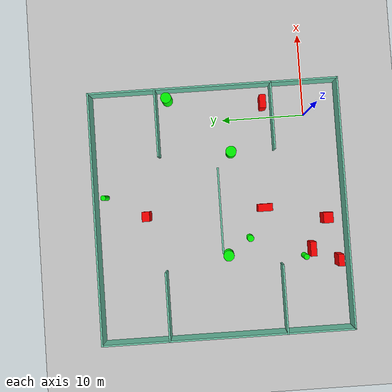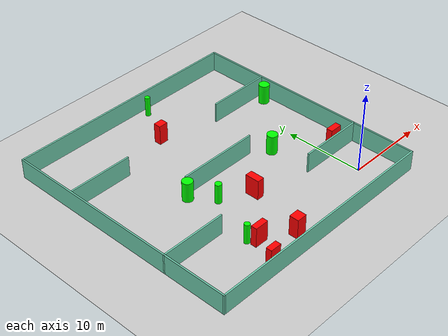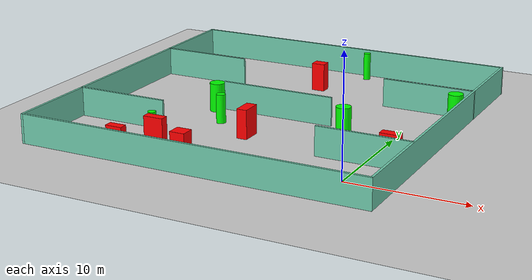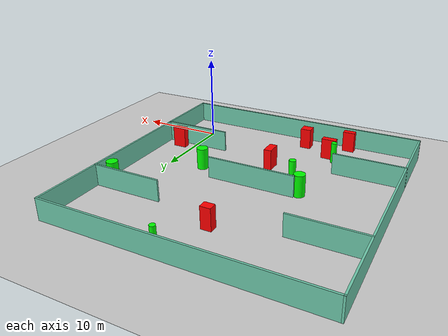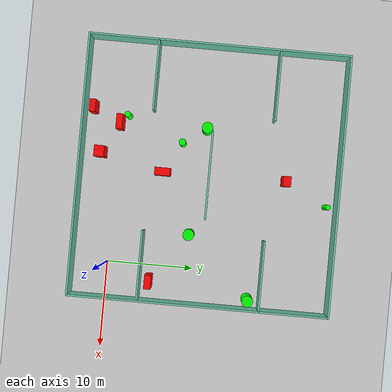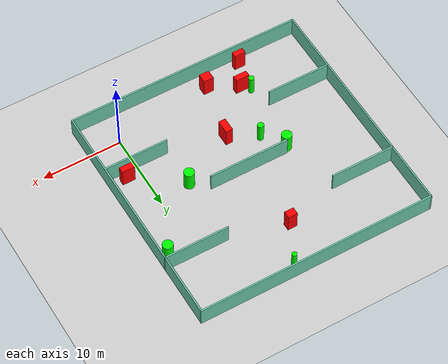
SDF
<sdf version="1.7">
 <world name="default">
  <light name="sun" type="directional">
   <pose>0 0 10 0 -0 0</pose>
   <diffuse>0.8 0.8 0.8 1</diffuse>
   <specular>0.2 0.2 0.2 1</specular>
   <attenuation>
    <range>1000</range>
    <constant>0.9</constant>
    <linear>0.01</linear>
    <quadratic>0.001</quadratic>
   </attenuation>
   <direction>-0.5 0.1 -0.9</direction>
   <spot><inner_angle>0</inner_angle><outer_angle>0</outer_angle><falloff>0</falloff></spot>
  </light>
  <model name="ground_plane">
   <static>1</static>
   <link name="link">
    <collision name="collision">
     <geometry><plane><normal>0 0 1</normal><size>100 100</size></plane></geometry>
     <surface>
      <contact><collide_bitmask>65535</collide_bitmask></contact>
      <friction><ode><mu>100</mu><mu2>50</mu2></ode></friction>
     </surface>
    </collision>
    <visual name="visual">
     <cast_shadows>0</cast_shadows>
     <geometry><plane><normal>0 0 1</normal><size>100 100</size></plane></geometry>
     <material>
      <script><uri>file://media/materials/scripts/gazebo.material</uri><name>Gazebo/Grey</name></script>
     </material>
    </visual>
   </link>
  </model>
  <gravity>0 0 -9.8</gravity>
  <magnetic_field>6e-06 2.3e-05 -4.2e-05</magnetic_field>
  <atmosphere type="adiabatic"/>
  <physics type="ode">
   <max_step_size>0.001</max_step_size>
   <real_time_factor>1</real_time_factor>
   <real_time_update_rate>1000</real_time_update_rate>
  </physics>
  <scene><ambient>0.4 0.4 0.4 1</ambient><background>0.7 0.7 0.7 1</background><shadows>1</shadows></scene>
  <spherical_coordinates>
   <surface_model>EARTH_WGS84</surface_model>
   <latitude_deg>0</latitude_deg>
   <longitude_deg>0</longitude_deg>
   <elevation>0</elevation>
   <heading_deg>0</heading_deg>
  </spherical_coordinates>
  <model name="my_base_walls">
   <link name="Wall_10">
    <collision name="Wall_10_Collision">
     <geometry><box><size>8.2 0.2 2.5</size></box></geometry>
     <pose>0 0 1.25 0 -0 0</pose>
    </collision>
    <visual name="Wall_10_Visual">
     <pose>0 0 1.25 0 -0 0</pose>
     <geometry><box><size>8.2 0.2 2.5</size></box></geometry>
     <material>
      <script><uri>file://media/materials/scripts/gazebo.material</uri><name>Gazebo/Grey</name></script>
      <ambient>0.435294 0.796078 0.67451 1</ambient>
     </material>
     <meta><layer>0</layer></meta>
    </visual>
    <pose>-11 -7 0 0 -0 0</pose>
   </link>
   <link name="Wall_12">
    <collision name="Wall_12_Collision">
     <geometry><box><size>8.2 0.2 2.5</size></box></geometry>
     <pose>0 0 1.25 0 -0 0</pose>
    </collision>
    <visual name="Wall_12_Visual">
     <pose>0 0 1.25 0 -0 0</pose>
     <geometry><box><size>8.2 0.2 2.5</size></box></geometry>
     <material>
      <script><uri>file://media/materials/scripts/gazebo.material</uri><name>Gazebo/Grey</name></script>
      <ambient>0.435294 0.796078 0.67451 1</ambient>
     </material>
     <meta><layer>0</layer></meta>
    </visual>
    <pose>-11 7 0 0 -0 0</pose>
   </link>
   <link name="Wall_14">
    <collision name="Wall_14_Collision">
     <geometry><box><size>8.2 0.2 2.5</size></box></geometry>
     <pose>0 0 1.25 0 -0 0</pose>
    </collision>
    <visual name="Wall_14_Visual">
     <pose>0 0 1.25 0 -0 0</pose>
     <geometry><box><size>8.2 0.2 2.5</size></box></geometry>
     <material>
      <script><uri>file://media/materials/scripts/gazebo.material</uri><name>Gazebo/Grey</name></script>
      <ambient>0.435294 0.796078 0.67451 1</ambient>
     </material>
     <meta><layer>0</layer></meta>
    </visual>
    <pose>11 7 0 0 -0 3.14159</pose>
   </link>
   <link name="Wall_16">
    <collision name="Wall_16_Collision">
     <geometry><box><size>10.2 0.2 2.5</size></box></geometry>
     <pose>0 0 1.25 0 -0 0</pose>
    </collision>
    <visual name="Wall_16_Visual">
     <pose>0 0 1.25 0 -0 0</pose>
     <geometry><box><size>10.2 0.2 2.5</size></box></geometry>
     <material>
      <script><uri>file://media/materials/scripts/gazebo.material</uri><name>Gazebo/Grey</name></script>
      <ambient>0.435294 0.796078 0.67451 1</ambient>
     </material>
     <meta><layer>0</layer></meta>
    </visual>
    <pose>0 0 0 0 -0 3.14159</pose>
   </link>
   <link name="Wall_2">
    <collision name="Wall_2_Collision">
     <geometry><box><size>30.2 0.2 2.5</size></box></geometry>
     <pose>0 0 1.25 0 -0 0</pose>
    </collision>
    <visual name="Wall_2_Visual">
     <pose>0 0 1.25 0 -0 0</pose>
     <geometry><box><size>30.2 0.2 2.5</size></box></geometry>
     <material>
      <script><uri>file://media/materials/scripts/gazebo.material</uri><name>Gazebo/Grey</name></script>
      <ambient>0.435294 0.796078 0.67451 1</ambient>
     </material>
     <meta><layer>0</layer></meta>
    </visual>
    <pose>0 -15 0 0 -0 3.14159</pose>
   </link>
   <link name="Wall_3">
    <collision name="Wall_3_Collision">
     <geometry><box><size>30.2 0.2 2.5</size></box></geometry>
     <pose>0 0 1.25 0 -0 0</pose>
    </collision>
    <visual name="Wall_3_Visual">
     <pose>0 0 1.25 0 -0 0</pose>
     <geometry><box><size>30.2 0.2 2.5</size></box></geometry>
     <material>
      <script><uri>file://media/materials/scripts/gazebo.material</uri><name>Gazebo/Grey</name></script>
      <ambient>0.435294 0.796078 0.67451 1</ambient>
     </material>
     <meta><layer>0</layer></meta>
    </visual>
    <pose>-15 0 0 0 -0 1.5708</pose>
   </link>
   <link name="Wall_4">
    <collision name="Wall_4_Collision">
     <geometry><box><size>30.2 0.2 2.5</size></box></geometry>
     <pose>0 0 1.25 0 -0 0</pose>
    </collision>
    <visual name="Wall_4_Visual">
     <pose>0 0 1.25 0 -0 0</pose>
     <geometry><box><size>30.2 0.2 2.5</size></box></geometry>
     <material>
      <script><uri>file://media/materials/scripts/gazebo.material</uri><name>Gazebo/Grey</name></script>
      <ambient>0.435294 0.796078 0.67451 1</ambient>
     </material>
     <meta><layer>0</layer></meta>
    </visual>
    <pose>0 15 0 0 -0 0</pose>
   </link>
   <link name="Wall_6">
    <collision name="Wall_6_Collision">
     <geometry><box><size>30.2 0.2 2.5</size></box></geometry>
     <pose>0 0 1.25 0 -0 0</pose>
    </collision>
    <visual name="Wall_6_Visual">
     <pose>0 0 1.25 0 -0 0</pose>
     <geometry><box><size>30.2 0.2 2.5</size></box></geometry>
     <material>
      <script><uri>file://media/materials/scripts/gazebo.material</uri><name>Gazebo/Grey</name></script>
      <ambient>0.435294 0.796078 0.67451 1</ambient>
     </material>
     <meta><layer>0</layer></meta>
    </visual>
    <pose>15 0 0 0 -0 1.5708</pose>
   </link>
   <link name="Wall_8">
    <collision name="Wall_8_Collision">
     <geometry><box><size>8.2 0.2 2.5</size></box></geometry>
     <pose>0 0 1.25 0 -0 0</pose>
    </collision>
    <visual name="Wall_8_Visual">
     <pose>0 0 1.25 0 -0 0</pose>
     <geometry><box><size>8.2 0.2 2.5</size></box></geometry>
     <material>
      <script><uri>file://media/materials/scripts/gazebo.material</uri><name>Gazebo/Grey</name></script>
      <ambient>0.435294 0.796078 0.67451 1</ambient>
     </material>
     <meta><layer>0</layer></meta>
    </visual>
    <pose>11 -7 0 0 -0 3.14159</pose>
   </link>
   <static>1</static>
   <pose>-11 11 0 0 -0 0</pose>
  </model>
  <model name="cylinder1">
   <static>1</static>
   <link name="link">
    <inertial>
     <mass>1</mass>
     <inertia><ixx>0.5</ixx><ixy>0</ixy><ixz>0</ixz><iyy>0.5</iyy><iyz>0</iyz><izz>1</izz></inertia>
    </inertial>
    <collision name="collision">
     <geometry><cylinder><radius>0.4002196783902398</radius><length>2.5</length></cylinder></geometry>
    </collision>
    <visual name="visual">
     <geometry><cylinder><radius>0.4002196783902398</radius><length>2.5</length></cylinder></geometry>
     <material>
      <ambient>0 1 0 1</ambient>
      <diffuse>0 1 0 1</diffuse>
      <specular>0.1 0.1 0.1 1</specular>
      <emissive>0 0 0 0</emissive>
     </material>
    </visual>
   </link>
   <pose>-14.53968449969692 7.651930292365691 1.25 0 0 0</pose>
  </model>
  <model name="cylinder2">
   <static>1</static>
   <link name="link">
    <inertial>
     <mass>1</mass>
     <inertia><ixx>0.5</ixx><ixy>0</ixy><ixz>0</ixz><iyy>0.5</iyy><iyz>0</iyz><izz>1</izz></inertia>
    </inertial>
    <collision name="collision">
     <geometry><cylinder><radius>0.6450286114729442</radius><length>2.5</length></cylinder></geometry>
    </collision>
    <visual name="visual">
     <geometry><cylinder><radius>0.6450286114729442</radius><length>2.5</length></cylinder></geometry>
     <material>
      <ambient>0 1 0 1</ambient>
      <diffuse>0 1 0 1</diffuse>
      <specular>0.1 0.1 0.1 1</specular>
      <emissive>0 0 0 0</emissive>
     </material>
    </visual>
   </link>
   <pose>-4.0420010136841285 9.270722739667479 1.25 0 0 0</pose>
  </model>
  <model name="cylinder3">
   <static>1</static>
   <link name="link">
    <inertial>
     <mass>1</mass>
     <inertia><ixx>0.5</ixx><ixy>0</ixy><ixz>0</ixz><iyy>0.5</iyy><iyz>0</iyz><izz>1</izz></inertia>
    </inertial>
    <collision name="collision">
     <geometry><cylinder><radius>0.6444600166679176</radius><length>2.5</length></cylinder></geometry>
    </collision>
    <visual name="visual">
     <geometry><cylinder><radius>0.6444600166679176</radius><length>2.5</length></cylinder></geometry>
     <material>
      <ambient>0 1 0 1</ambient>
      <diffuse>0 1 0 1</diffuse>
      <specular>0.1 0.1 0.1 1</specular>
      <emissive>0 0 0 0</emissive>
     </material>
    </visual>
   </link>
   <pose>2.9118056119297044 16.634127413964702 1.25 0 0 0</pose>
  </model>
  <model name="cylinder4">
   <static>1</static>
   <link name="link">
    <inertial>
     <mass>1</mass>
     <inertia><ixx>0.5</ixx><ixy>0</ixy><ixz>0</ixz><iyy>0.5</iyy><iyz>0</iyz><izz>1</izz></inertia>
    </inertial>
    <collision name="collision">
     <geometry><cylinder><radius>0.31246044829938474</radius><length>2.5</length></cylinder></geometry>
    </collision>
    <visual name="visual">
     <geometry><cylinder><radius>0.31246044829938474</radius><length>2.5</length></cylinder></geometry>
     <material>
      <ambient>0 1 0 1</ambient>
      <diffuse>0 1 0 1</diffuse>
      <specular>0.1 0.1 0.1 1</specular>
      <emissive>0 0 0 0</emissive>
     </material>
    </visual>
   </link>
   <pose>-8.58264631200856 24.84387828737962 1.25 0 0 0</pose>
  </model>
  <model name="cylinder5">
   <static>1</static>
   <link name="link">
    <inertial>
     <mass>1</mass>
     <inertia><ixx>0.5</ixx><ixy>0</ixy><ixz>0</ixz><iyy>0.5</iyy><iyz>0</iyz><izz>1</izz></inertia>
    </inertial>
    <collision name="collision">
     <geometry><cylinder><radius>0.3361569150283109</radius><length>2.5</length></cylinder></geometry>
    </collision>
    <visual name="visual">
     <geometry><cylinder><radius>0.3361569150283109</radius><length>2.5</length></cylinder></geometry>
     <material>
      <ambient>0 1 0 1</ambient>
      <diffuse>0 1 0 1</diffuse>
      <specular>0.1 0.1 0.1 1</specular>
      <emissive>0 0 0 0</emissive>
     </material>
    </visual>
   </link>
   <pose>-17.16727855162127 1.1578340029320877 1.25 0 0 0</pose>
  </model>
  <model name="cylinder6">
   <static>1</static>
   <link name="link">
    <inertial>
     <mass>1</mass>
     <inertia><ixx>0.5</ixx><ixy>0</ixy><ixz>0</ixz><iyy>0.5</iyy><iyz>0</iyz><izz>1</izz></inertia>
    </inertial>
    <collision name="collision">
     <geometry><cylinder><radius>0.6414832006730715</radius><length>2.5</length></cylinder></geometry>
    </collision>
    <visual name="visual">
     <geometry><cylinder><radius>0.6414832006730715</radius><length>2.5</length></cylinder></geometry>
     <material>
      <ambient>0 1 0 1</ambient>
      <diffuse>0 1 0 1</diffuse>
      <specular>0.1 0.1 0.1 1</specular>
      <emissive>0 0 0 0</emissive>
     </material>
    </visual>
   </link>
   <pose>-16.427268483964667 10.357186149459292 1.25 0 0 0</pose>
  </model>
  <model name="box1">
   <static>1</static>
   <link name="link">
    <inertial>
     <mass>1</mass>
     <inertia><ixx>0.083</ixx><ixy>0</ixy><ixz>0</ixz><iyy>0.083</iyy><iyz>0</iyz><izz>0.083</izz></inertia>
    </inertial>
    <collision name="collision">
     <geometry><box><size>1.412386212487879 0.7120965092676427 2.5</size></box></geometry>
    </collision>
    <visual name="visual">
     <geometry><box><size>1.412386212487879 0.7120965092676427 2.5</size></box></geometry>
     <material>
      <ambient>1 0 0 1</ambient>
      <diffuse>1 0 0 1</diffuse>
      <specular>0.1 0.1 0.1 1</specular>
      <emissive>0 0 0 0</emissive>
     </material>
    </visual>
    <sensor name="my_contact" type="contact">
     <contact><collision>box_collision</collision><topic>__default_topic__</topic></contact>
    </sensor>
   </link>
   <pose>-17.831129086291302 -2.9266278333696567 1.25 0 0 0</pose>
  </model>
  <model name="box2">
   <static>1</static>
   <link name="link">
    <inertial>
     <mass>1</mass>
     <inertia><ixx>0.083</ixx><ixy>0</ixy><ixz>0</ixz><iyy>0.083</iyy><iyz>0</iyz><izz>0.083</izz></inertia>
    </inertial>
    <collision name="collision">
     <geometry><box><size>0.8910529754409982 1.7585197619262198 2.5</size></box></geometry>
    </collision>
    <visual name="visual">
     <geometry><box><size>0.8910529754409982 1.7585197619262198 2.5</size></box></geometry>
     <material>
      <ambient>1 0 0 1</ambient>
      <diffuse>1 0 0 1</diffuse>
      <specular>0.1 0.1 0.1 1</specular>
      <emissive>0 0 0 0</emissive>
     </material>
    </visual>
    <sensor name="my_contact" type="contact">
     <contact><collision>box_collision</collision><topic>__default_topic__</topic></contact>
    </sensor>
   </link>
   <pose>-10.999323901728053 5.654508309940409 1.25 0 0 0</pose>
  </model>
  <model name="box3">
   <static>1</static>
   <link name="link">
    <inertial>
     <mass>1</mass>
     <inertia><ixx>0.083</ixx><ixy>0</ixy><ixz>0</ixz><iyy>0.083</iyy><iyz>0</iyz><izz>0.083</izz></inertia>
    </inertial>
    <collision name="collision">
     <geometry><box><size>1.615180772803874 0.7639690212790446 2.5</size></box></geometry>
    </collision>
    <visual name="visual">
     <geometry><box><size>1.615180772803874 0.7639690212790446 2.5</size></box></geometry>
     <material>
      <ambient>1 0 0 1</ambient>
      <diffuse>1 0 0 1</diffuse>
      <specular>0.1 0.1 0.1 1</specular>
      <emissive>0 0 0 0</emissive>
     </material>
    </visual>
    <sensor name="my_contact" type="contact">
     <contact><collision>box_collision</collision><topic>__default_topic__</topic></contact>
    </sensor>
   </link>
   <pose>1.737071687703562 5.079113054524884 1.25 0 0 0</pose>
  </model>
  <model name="box4">
   <static>1</static>
   <link name="link">
    <inertial>
     <mass>1</mass>
     <inertia><ixx>0.083</ixx><ixy>0</ixy><ixz>0</ixz><iyy>0.083</iyy><iyz>0</iyz><izz>0.083</izz></inertia>
    </inertial>
    <collision name="collision">
     <geometry><box><size>1.2694553751241884 1.1590353560247197 2.5</size></box></geometry>
    </collision>
    <visual name="visual">
     <geometry><box><size>1.2694553751241884 1.1590353560247197 2.5</size></box></geometry>
     <material>
      <ambient>1 0 0 1</ambient>
      <diffuse>1 0 0 1</diffuse>
      <specular>0.1 0.1 0.1 1</specular>
      <emissive>0 0 0 0</emissive>
     </material>
    </visual>
    <sensor name="my_contact" type="contact">
     <contact><collision>box_collision</collision><topic>__default_topic__</topic></contact>
    </sensor>
   </link>
   <pose>-12.703167062795892 -1.7436684661017612 1.25 0 0 0</pose>
  </model>
  <model name="box5">
   <static>1</static>
   <link name="link">
    <inertial>
     <mass>1</mass>
     <inertia><ixx>0.083</ixx><ixy>0</ixy><ixz>0</ixz><iyy>0.083</iyy><iyz>0</iyz><izz>0.083</izz></inertia>
    </inertial>
    <collision name="collision">
     <geometry><box><size>1.7132653686097346 0.7262632256133131 2.5</size></box></geometry>
    </collision>
    <visual name="visual">
     <geometry><box><size>1.7132653686097346 0.7262632256133131 2.5</size></box></geometry>
     <material>
      <ambient>1 0 0 1</ambient>
      <diffuse>1 0 0 1</diffuse>
      <specular>0.1 0.1 0.1 1</specular>
      <emissive>0 0 0 0</emissive>
     </material>
    </visual>
    <sensor name="my_contact" type="contact">
     <contact><collision>box_collision</collision><topic>__default_topic__</topic></contact>
    </sensor>
   </link>
   <pose>-16.293992694727237 0.2726497061731483 1.25 0 0 0</pose>
  </model>
  <model name="box6">
   <static>1</static>
   <link name="link">
    <inertial>
     <mass>1</mass>
     <inertia><ixx>0.083</ixx><ixy>0</ixy><ixz>0</ixz><iyy>0.083</iyy><iyz>0</iyz><izz>0.083</izz></inertia>
    </inertial>
    <collision name="collision">
     <geometry><box><size>1.171554876842813 0.9229260043439281 2.5</size></box></geometry>
    </collision>
    <visual name="visual">
     <geometry><box><size>1.171554876842813 0.9229260043439281 2.5</size></box></geometry>
     <material>
      <ambient>1 0 0 1</ambient>
      <diffuse>1 0 0 1</diffuse>
      <specular>0.1 0.1 0.1 1</specular>
      <emissive>0 0 0 0</emissive>
     </material>
    </visual>
    <sensor name="my_contact" type="contact">
     <contact><collision>box_collision</collision><topic>__default_topic__</topic></contact>
    </sensor>
   </link>
   <pose>-11.137508430453547 19.933072329887093 1.25 0 0 0</pose>
  </model>
 </world>
</sdf>
